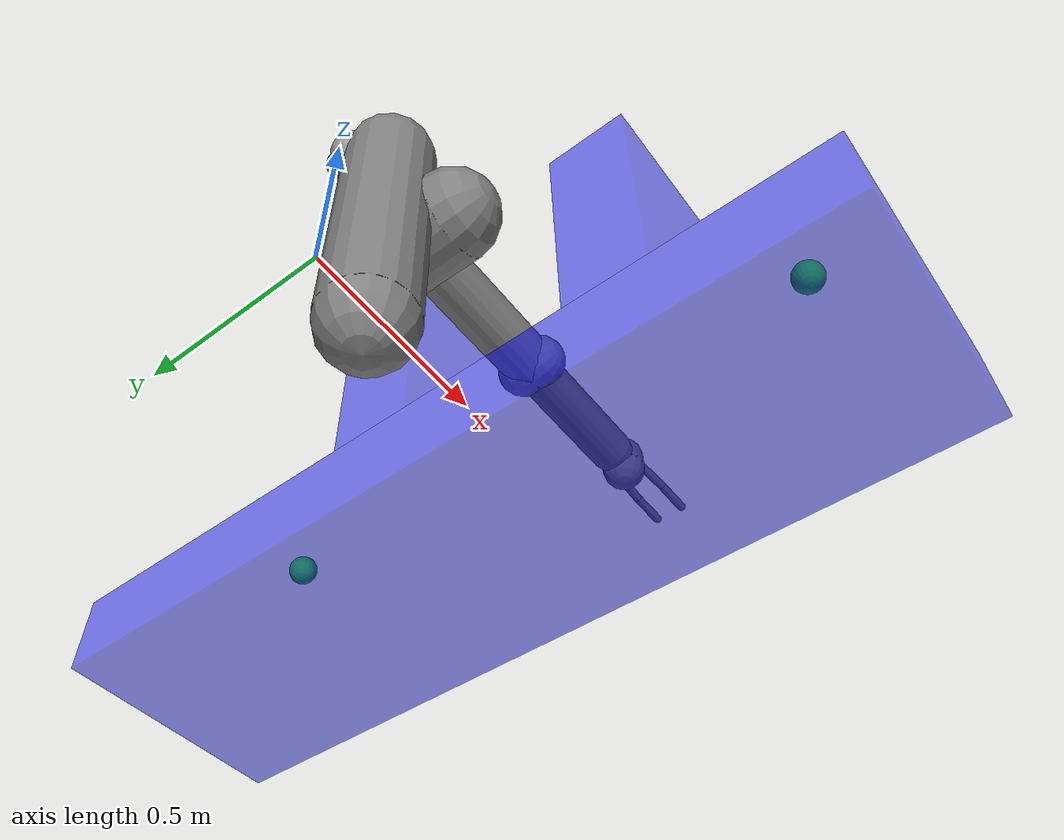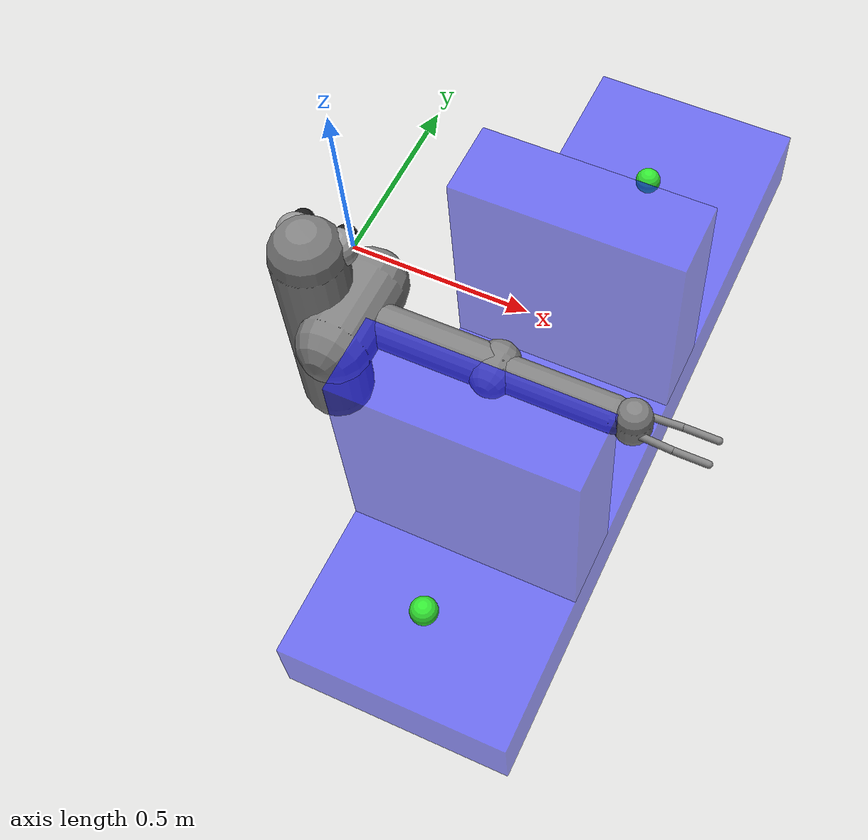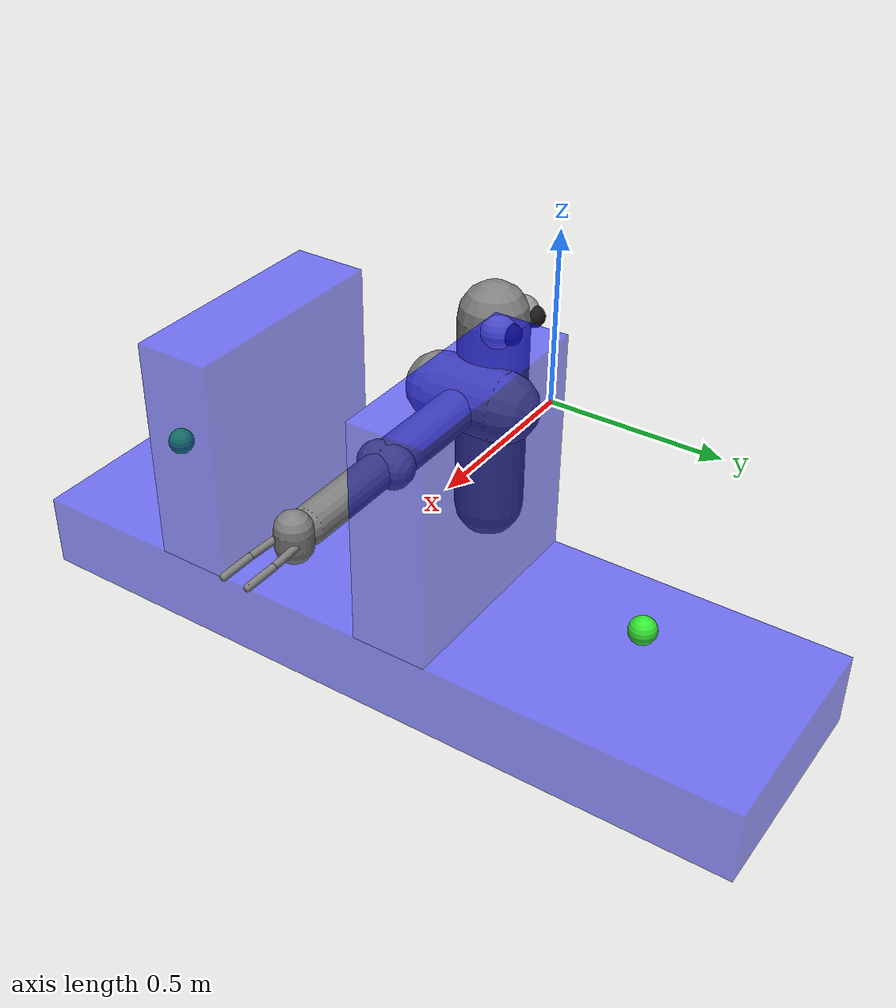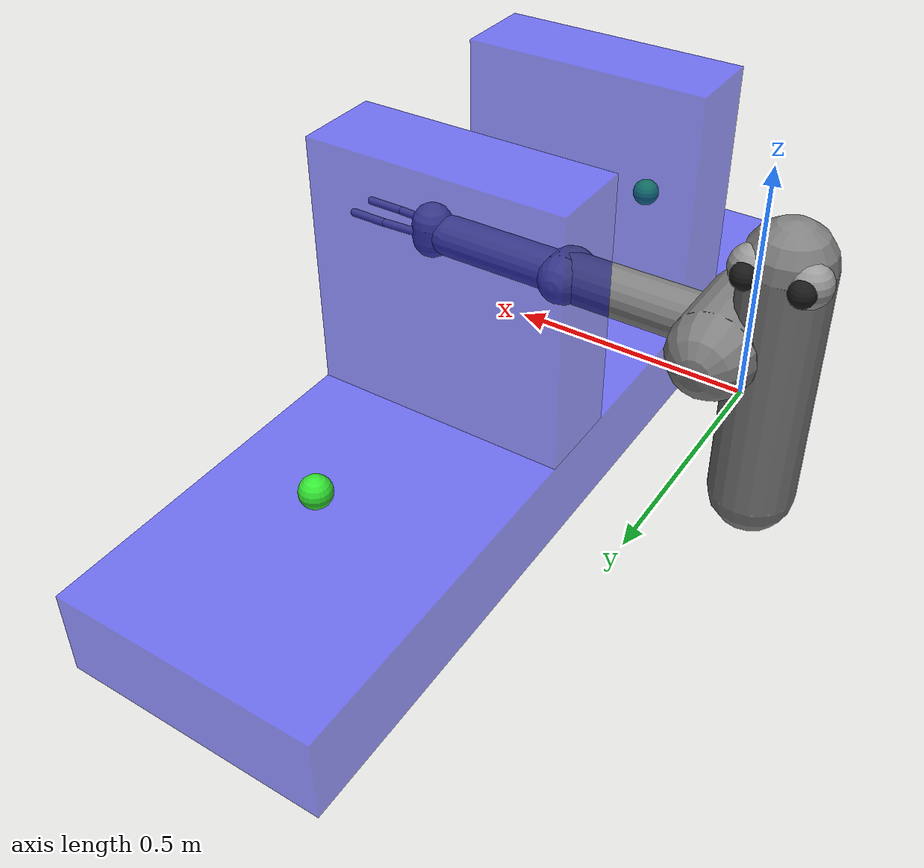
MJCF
<mujoco model="arm3d">

    <compiler inertiafromgeom="true" angle="radian" coordinate="local" />
    <option timestep="0.01" gravity="0 0 0" iterations="20" integrator="RK4" />
    <default>
        <joint armature="0.04" damping="1" limited="true" />
        <geom friction=".5 .1 .1" margin="0.002" condim="1" contype="0" conaffinity="0" />
    </default>
    <asset>
        <texture type="skybox" builtin="checker" rgb1="1 1 1" rgb2="1 1 1"
                 width="256" height="256"/>
        <texture name="texgeom" type="cube" builtin="flat" mark="cross" width="127" height="1278" rgb1="0.8 0.6 0.4" rgb2="0.8 0.6 0.4" markrgb="1 1 1" random="0.01" />
        <texture name="texplane" type="2d" builtin="checker" rgb1=".5 .5 .5" rgb2=".5 .5 .5" width="100" height="100" />
        <texture name="texplane_show" type="2d" builtin="checker" rgb1="0 0 0" rgb2="0.9 0.9 0.9" width="100" height="100" />
        <material name='MatPlane' texture="texplane" shininess="1" texrepeat="30 30" specular="1"  reflectance="0.5" />
        <material name='geom' texture="texgeom" texuniform="true" />
    </asset>
    <worldbody>
        <light pos="0 0 5" />
        <body name="r_shoulder_pan_link" pos="0 -0.188 0">
            <geom name="e1" type="sphere" rgba="0.6 0.6 0.6 1" pos="-0.06 0.05 0.2" size="0.05" />
            <geom name="e2" type="sphere" rgba="0.6 0.6 0.6 1" pos=" 0.06 0.05 0.2" size="0.05" />
            <geom name="e1p" type="sphere" rgba="0.1 0.1 0.1 1" pos="-0.06 0.09 0.2" size="0.03" />
            <geom name="e2p" type="sphere" rgba="0.1 0.1 0.1 1" pos=" 0.06 0.09 0.2" size="0.03" />
            <geom name="sp" type="capsule" fromto="0 0 -0.4 0 0 0.2" size="0.1" />
            <joint name="r_shoulder_pan_joint" type="hinge" pos="0 0 0" axis="0 0 1" range="-2.2854 1.714602" damping="10.0" />

            <body name="r_shoulder_lift_link" pos="0.1 0 0">
                <geom name="sl" type="capsule" fromto="0 -0.1 0 0 0.1 0" size="0.1" />
                <joint name="r_shoulder_lift_joint" type="hinge" pos="0 0 0" axis="0 1 0" range="-0.5236 1.3963" damping="10.0" />

                <body name="r_upper_arm_roll_link" pos="0 0 0">
                    <geom name="uar" type="capsule" fromto="-0.1 0 0 0.1 0 0" size="0.02" />
                    <joint name="r_upper_arm_roll_joint" type="hinge" pos="0 0 0" axis="1 0 0" range="-3.9 0.8" damping="0.1" />

                    <body name="r_upper_arm_link" pos="0 0 0">
                        <geom name="ua" type="capsule" fromto="0 0 0 0.4 0 0" size="0.06" />

                        <body name="r_elbow_flex_link" pos="0.4 0 0">
                            <geom name="ef" type="capsule" fromto="0 -0.02 0 0.0 0.02 0" size="0.06" />
                            <joint name="r_elbow_flex_joint" type="hinge" pos="0 0 0" axis="0 1 0" range="-2.3213 0" damping="1.0" />

                            <body name="r_forearm_roll_link" pos="0 0 0">
                                <geom name="fr" type="capsule" fromto="-0.1 0 0 0.1 0 0" size="0.02" />
                                <joint name="r_forearm_roll_joint" type="hinge" limited="false" pos="0 0 0" axis="1 0 0" damping=".1" />

                                <body name="r_forearm_link" pos="0 0 0">
                                    <geom name="fa" type="capsule" fromto="0 0 0 0.321 0 0" size="0.05"/>

                                    <body name="r_wrist_flex_link" pos="0.321 0 0">
                                        <geom name="wf" type="capsule" fromto="0 -0.02 0 0 0.02 0" size="0.01" />
                                        <joint name="r_wrist_flex_joint" type="hinge" pos="0 0 0" axis="0 1 0" range="-2.094 0" damping=".1" />

                                        <body name="r_wrist_roll_link" pos="0 0 0">
                                            <geom name="wr" type="capsule" fromto="-0.02 0 0 0.02 0 0" size="0.01" />
                                            <joint name="r_wrist_roll_joint" type="hinge" pos="0 0 0" limited="false" axis="1 0 0" damping="0.1" />

                                            <body name="r_gripper_palm_link" pos="0 0 0">
                                                <geom name="pl" type="capsule" fromto="0.05 0 -0.02 0.05 0 0.02" size="0.05" />

                                                <body name="r_gripper_l_finger_link" pos="0.07691 0.03 0">
                                                    <geom name="gf3" type="capsule" fromto="0 0 0 0.09137 0.00495 0" size="0.01" contype="1" conaffinity="8"/>

                                                    <body name="r_gripper_l_finger_tip_link" pos="0.09137 0.00495 0">
                                                        <geom name="gf4" type="capsule" fromto="0 0 0 0.09137 0.0 0" size="0.01" contype="1" conaffinity="8"/>
                                                    </body>
                                                </body>

                                                <body name="r_gripper_r_finger_link" pos="0.07691 -0.03 0">
                                                    <geom name="gf1" type="capsule" fromto="0 0 0 0.09137 -0.00495 0" size="0.01" contype="1" conaffinity="16"/>

                                                    <body name="r_gripper_r_finger_tip_link" pos="0.09137 -0.00495 0">
                                                        <geom name="gf2" type="capsule" fromto="0 0 0 0.09137 0.0 0" size="0.01" contype="1" conaffinity="16"/>
                                                    </body>
                                                </body>
                                            </body>
                                        </body>
                                    </body>
                                </body>
                            </body>
                        </body>
                    </body>
                </body>
            </body>
        </body>

        <body name="wall1" pos="0.0 0.0 0.0">
            <geom name="wall1" type="box" pos="0.6 -0.5 0.1" size="0.3 0.1 0.3" rgba="0.0 0.0 1.0 0.5"
                contype="1" conaffinity="1" friction="2 0.1 0.002"/>
        </body>
        <body name="wall2" pos="0.0 0.0 0.0">
            <geom name="wall2" type="box" pos="0.6 0.1 0.1" size="0.3 0.1 0.3" rgba="0.0 0.0 1.0 0.5"
                contype="1" conaffinity="1" friction="2 0.1 0.002"/>
        </body>
        <body name="wall3" pos="0.0 0.0 0.0">
            <geom name="wall3" type="box" pos="0.6 0. -0.3" size="0.3 1.0 0.1" rgba="0.0 0.0 1.0 0.5"
                contype="1" conaffinity="1" friction="2 0.1 0.002"/>
        </body>

        <body name="target" pos="0.6 0.6 -0.1">
            <joint armature="0" axis="1 0 0" damping="0" limited="false" name="target_x" pos="0 0 0" ref="0" stiffness="0" type="slide"/>
            <joint armature="0" axis="0 1 0" damping="0" limited="false" name="target_y" pos="0 0 0" ref="0.25" stiffness="0" type="slide"/>
            <joint armature="0" axis="0 0 1" damping="0" limited="false" name="target_z" pos="0 0 0" ref="0" stiffness="0" type="slide"/>
            <geom conaffinity="0" contype="0" name="target" pos="0 0 0" rgba="0.2 0.9 0.2 1" size=".035" type="sphere"/>
        </body>

        <body name="key" pos="0.6 -0.8 -0.1">
            <joint armature="0" axis="1 0 0" damping="0" limited="false" name="key_x" pos="0 0 0" ref="0" stiffness="0" type="slide"/>
            <joint armature="0" axis="0 1 0" damping="0" limited="false" name="key_y" pos="0 0 0" ref="0.25" stiffness="0" type="slide"/>
            <joint armature="0" axis="0 0 1" damping="0" limited="false" name="key_z" pos="0 0 0" ref="0" stiffness="0" type="slide"/>
            <geom conaffinity="0" contype="0" name="key" pos="0 0 0" rgba="0.2 0.9 0.2 1" size=".035" type="sphere"/>
        </body>
    </worldbody>

    <actuator>
        <motor joint="r_shoulder_pan_joint" ctrlrange="-20.0 20.0" ctrllimited="true" />
        <motor joint="r_shoulder_lift_joint" ctrlrange="-20.0 20.0" ctrllimited="true" />
        <motor joint="r_upper_arm_roll_joint" ctrlrange="-20.0 20.0" ctrllimited="true" />
        <motor joint="r_elbow_flex_joint" ctrlrange="-20.0 20.0" ctrllimited="true" />
        <motor joint="r_forearm_roll_joint" ctrlrange="-20.0 20.0" ctrllimited="true" />
        <motor joint="r_wrist_flex_joint" ctrlrange="-20.0 20.0" ctrllimited="true" />
        <motor joint="r_wrist_roll_joint" ctrlrange="-20.0 20.0" ctrllimited="true" />
    </actuator>

</mujoco>
